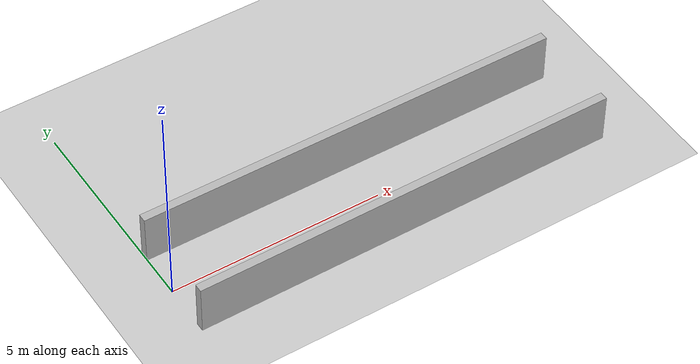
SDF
<?xml version="1.0"?>
<sdf version="1.6">
  <world name="v2-04g-r3-corridor-s5032">
    <gravity>0 0 -9.81</gravity>
    <physics name="v2_deterministic" type="ode">
      <max_step_size>0.002</max_step_size>
      <real_time_update_rate>500</real_time_update_rate>
    </physics>
    <include>
      <uri>model://sun</uri>
    </include>
    <include>
      <uri>model://ground_plane</uri>
    </include>
    <model name="corridor-left">
      <static>true</static>
      <pose>4.991612397 1.106264772 0.600000000 0 0 -0.003621256</pose>
      <link name="link">
        <collision name="collision">
          <geometry>
            <box>
              <size>10.000000 0.200000 1.200000</size>
            </box>
          </geometry>
        </collision>
        <visual name="visual">
          <geometry>
            <box>
              <size>10.000000 0.200000 1.200000</size>
            </box>
          </geometry>
        </visual>
      </link>
    </model>
    <model name="corridor-right">
      <static>true</static>
      <pose>4.992703742 -1.090396469 0.600000000 0 0 0.001833841</pose>
      <link name="link">
        <collision name="collision">
          <geometry>
            <box>
              <size>10.000000 0.200000 1.200000</size>
            </box>
          </geometry>
        </collision>
        <visual name="visual">
          <geometry>
            <box>
              <size>10.000000 0.200000 1.200000</size>
            </box>
          </geometry>
        </visual>
      </link>
    </model>
  </world>
</sdf>
